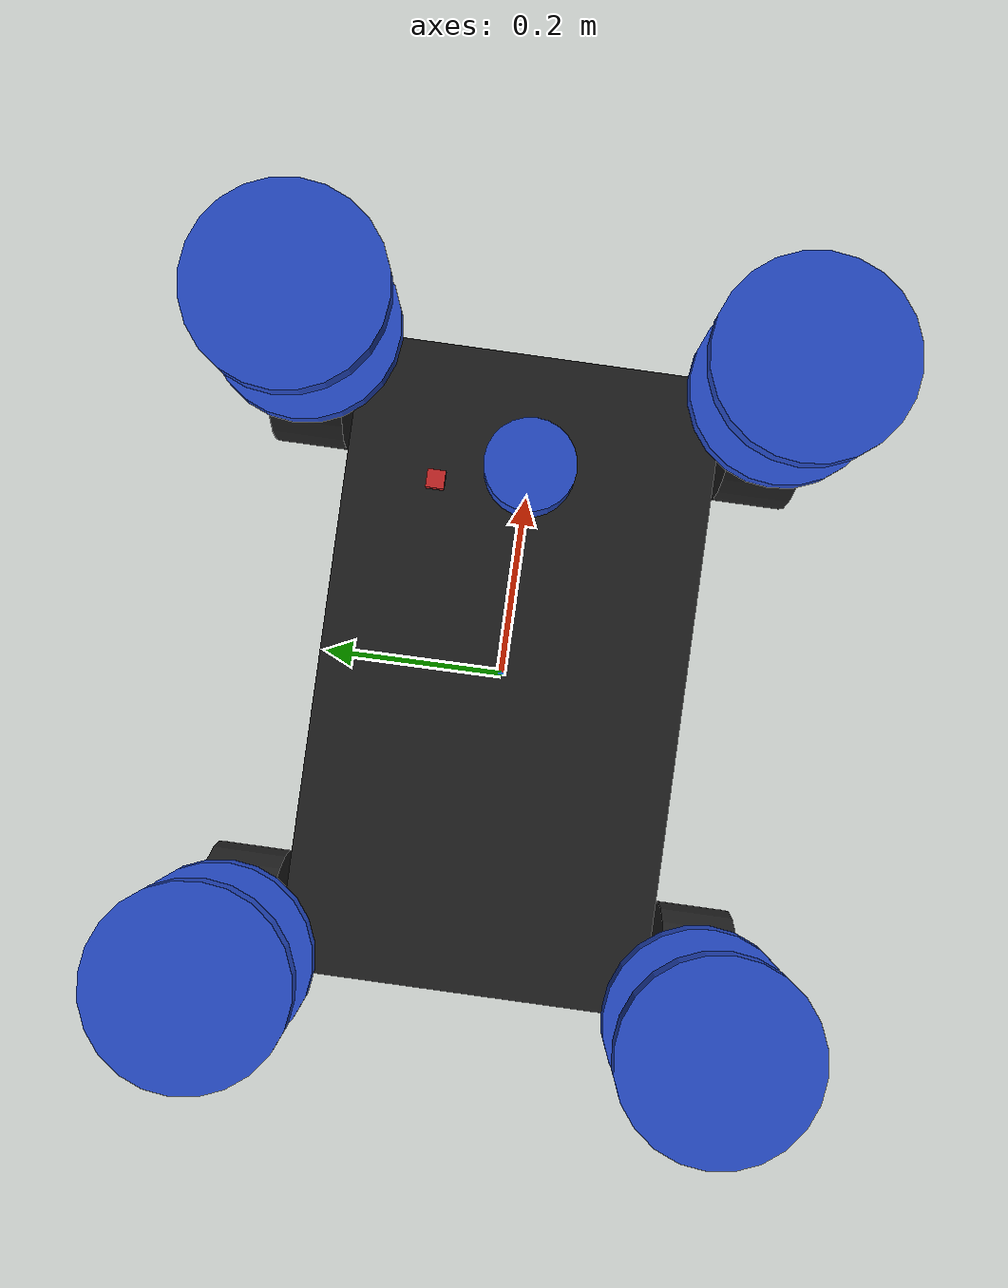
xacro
<?xml version="1.0"?>
<robot name="steer_bot" xmlns:xacro="http://wiki.ros.org/xacro">
  <!-- Include xacro for inertials, materials and wheels -->
  <xacro:include filename="$(find steer_bot_description)/urdf/wheel.xacro"/>
  <xacro:include filename="$(find steer_bot_description)/urdf/hokuyo.urdf.xacro"/>
  <xacro:include filename="$(find steer_bot_description)/urdf/imu.urdf.xacro"/>
  <xacro:include filename="$(find steer_bot_description)/urdf/camera.urdf.xacro"/>

  <xacro:property name="robot_namespace" value="/steer_bot"/>

  <!-- Gazebo plugins -->
  <gazebo>
    <!-- Load ros_control plugin using the steer_bot_hardware_gazebo
    implementation of the hardware_interface::RobotHW -->
    <plugin name="gazebo_ros_control" filename="libgazebo_ros_control.so">
      <robotNamespace>${robot_namespace}</robotNamespace>
      <robotSimType>steer_bot_hardware_gazebo/SteerBotHardwareGazebo</robotSimType>
      <legacyModeNS>false</legacyModeNS>
    </plugin>
  </gazebo>

  <!-- Math constants -->
  <xacro:property name="deg_to_rad" value="0.01745329251994329577"/>

  <!-- Robot base dimensions -->
  <xacro:property name="base_length" value="0.7" />
  <xacro:property name="base_width" value="0.4" />
  <xacro:property name="base_height" value="0.1" />
  <xacro:property name="base_mass" value="0.0645" />
  <!-- axle link -->
  <xacro:property name="axle_length" value="0.05"/>
  <xacro:property name="axle_mass" value="0.01"/>

  <!-- Wheel link dimensions -->
  <xacro:property name="wheel_radius" value="0.1" />
  <xacro:property name="wheel_thickness" value="0.08" />
  <xacro:property name="wheel_mass" value="1" />

  <!-- Steering link dimensions -->
  <xacro:property name="steer_radius" value="0.1" />
  <xacro:property name="steer_thickness" value="0.02" />
  <xacro:property name="steer_mass" value="0.2" />

  <!-- Axle positions -->
  <xacro:property name="axle_offset" value="0.05" />
  <xacro:property name="steer_offset" value="0.02" />

  <!--Shock_absorber-->
  <xacro:property name="spring_stiffness" value="2"/>
  <xacro:property name="lower" value="-0.03"/>
  <xacro:property name="upper" value="0"/>
  <xacro:property name="spring_reference" value="0"/>

  <!-- Base link -->
  <link name="base_link">
    <visual>
      <origin xyz="0 0 0" rpy="0 0 0"/>
      <geometry>
        <box size="${base_length} ${base_width} ${base_height}"/>
      </geometry>
      <material name="black" />
    </visual>
    <collision>
      <origin xyz="0 0 0" rpy="0 0 0"/>
      <geometry>
        <box size="${base_length} ${base_width} ${base_height}"/>
      </geometry>
    </collision>
    <xacro:solid_cuboid_inertial
        rpy="0 0 0" xyz="0 0 0"
        mass="${base_mass}"
        x="${base_length}" y="${base_width}" z="${base_height}" />
  </link>

  <!-- Include the lidar model -->
  <xacro:hokuyo_laser
    xyz="0.2 0 0.2"
    rpy="0 0 0"
    parent="base_link">
  </xacro:hokuyo_laser>

  <xacro:imu_sensor
    xyz="0.2 0.1 0.05"
    rpy="0 0 0"
    parent="base_link">
  </xacro:imu_sensor>

  <!-- Front steer and rear wheel joints required for ackermann_steering_controller -->
  <xacro:front_steer
    name="front"
    parent="base"
    steer_radius="${steer_radius}"
    steer_thickness="${steer_thickness}"
    steer_mass="${steer_mass}"
    base_length="${base_length}"
    base_width="${base_width}"
    axle_offset="${axle_offset}"
    steer_height="${wheel_radius+steer_offset}">
  </xacro:front_steer>

  <xacro:rear_wheel
    name="rear"
    parent="base"
    wheel_radius="${wheel_radius/4}"
    wheel_thickness="${wheel_thickness/2}"
    wheel_mass="${wheel_mass/32}">
    <origin xyz="${-base_length/2+steer_offset} 0 0" rpy="${-90 * deg_to_rad} 0 0"/>
  </xacro:rear_wheel>

  <!-- Steerable front wheels -->
  <xacro:front_wheel_lr
    name="front_right"
    parent="base"
    reflect="-1"
    wheel_radius="${wheel_radius}"
    wheel_thickness="${wheel_thickness}"
    wheel_mass="${wheel_mass}"
    steer_radius="${steer_radius}"
    steer_thickness="${steer_thickness}"
    steer_mass="${steer_mass}"
    base_length="${base_length}"
    base_width="${base_width}"
    axle_offset="${axle_offset}"
    steer_height="${wheel_radius+steer_offset}"
    lower="${lower}"
    upper="${upper}"
    spring_reference="{spring_reference}"
    spring_stiffness="{spring_stiffness}">
  </xacro:front_wheel_lr>
  <xacro:front_wheel_lr
    name="front_left"
    parent="base"
    reflect="1"
    wheel_radius="${wheel_radius}"
    wheel_thickness="${wheel_thickness}"
    wheel_mass="${wheel_mass}"
    steer_radius="${steer_radius}"
    steer_thickness="${steer_thickness}"
    steer_mass="${steer_mass}"
    base_length="${base_length}"
    base_width="${base_width}"
    axle_offset="${axle_offset}"
    steer_height="${wheel_radius+steer_offset}"
    lower="${lower}"
    upper="${upper}"
    spring_reference="{spring_reference}"
    spring_stiffness="{spring_stiffness}">
  </xacro:front_wheel_lr>

  <!-- Rear wheels -->
  <xacro:rear_wheel_lr
    name="rear_right"
    parent="base"
    reflect="-1"
    wheel_radius="${wheel_radius}"
    wheel_thickness="${wheel_thickness}"
    wheel_mass="${wheel_mass}"
    steer_radius="${steer_radius}"
    steer_thickness="${steer_thickness}"
    steer_mass="${steer_mass}"
    base_length="${base_length}"
    base_width="${base_width}"
    axle_offset="${axle_offset}"
    steer_height="${wheel_radius+steer_offset}"
    lower="${lower}"
    upper="${upper}"
    spring_reference="{spring_reference}"
    spring_stiffness="{spring_stiffness}">
  </xacro:rear_wheel_lr>
  <xacro:rear_wheel_lr
    name="rear_left"
    parent="base"
    reflect="1"
    wheel_radius="${wheel_radius}"
    wheel_thickness="${wheel_thickness}"
    wheel_mass="${wheel_mass}"
    steer_radius="${steer_radius}"
    steer_thickness="${steer_thickness}"
    steer_mass="${steer_mass}"
    base_length="${base_length}"
    base_width="${base_width}"
    axle_offset="${axle_offset}"
    steer_height="${wheel_radius+steer_offset}"
    lower="${lower}"
    upper="${upper}"
    spring_reference="{spring_reference}"
    spring_stiffness="{spring_stiffness}">

  </xacro:rear_wheel_lr>

  <!-- Colour -->
  <gazebo reference="base_link">
    <material>Gazebo/Grey</material>
  </gazebo>

</robot>

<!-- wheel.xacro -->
<robot name="wheel" xmlns:xacro="http://wiki.ros.org/xacro">
  <!-- Include xacro for materials and inertials -->
  <xacro:include filename="$(find steer_bot_description)/urdf/materials.xacro"/>
  <xacro:include filename="$(find steer_bot_description)/urdf/inertials.xacro"/>

  <!-- Properties -->
  <xacro:property name="steer_effort" value="100000.0"/>
  <xacro:property name="steer_velocity" value="50000.0"/>
  <xacro:property name="steer_limit_deg" value="45.0"/>

  <!-- Bicycle model front steering link (required for steer_drive_controller) -->
  <xacro:macro name="front_steer"
    params="
      name
      parent
      steer_radius
      steer_thickness
      steer_mass
      base_length
      base_width
      axle_offset
      steer_height">
    <link name="${name}_steer_link">
      <visual>
        <origin xyz="0 0 0" rpy="0 0 0"/>
        <geometry>
          <cylinder radius="${steer_radius/1000000}" length="${steer_thickness/1000000}"/>
        </geometry>
        <material name="yellow" />
      </visual>
      <collision>
        <origin xyz="0 0 0" rpy="0 0 0"/>
        <geometry>
          <cylinder radius="${steer_radius/1000000}" length="${steer_thickness/1000000}"/>
        </geometry>
      </collision>
      <xacro:solid_cylinder_inertial
          rpy="0 0 0" xyz="0 0 0"
          mass="${steer_mass/1000000}"
          radius="${steer_radius/1000000}" length="${steer_thickness/1000000}" />
    </link>

    <joint name="${name}_steer_joint" type="revolute">
      <parent link="${parent}_link"/>
      <child link="${name}_steer_link"/>
      <origin xyz="${base_length/2-steer_offset} 0 ${steer_height}" rpy="0 0 0"/>
      <axis xyz="0 0 1"/>
      <limit effort="${steer_effort}"
             lower="${-180.0 * deg_to_rad}" upper="${180.0 * deg_to_rad}"
             velocity="${steer_velocity}"/>
    </joint>

    <transmission name="${name}_steer_joint_trans">
      <type>transmission_interface/SimpleTransmission</type>
      <actuator name="${name}_steer_joint_motor">
        <mechanicalReduction>1</mechanicalReduction>
        <hardwareInterface>hardware_interface/PositionJointInterface</hardwareInterface>
      </actuator>
      <joint name="${name}_steer_joint">
        <hardwareInterface>hardware_interface/PositionJointInterface</hardwareInterface>
      </joint>
    </transmission>

    <gazebo reference="${name}_steer_link">
      <material>Gazebo/Yellow</material>
    </gazebo>
  </xacro:macro>

  <!-- Car steering model front (steerable) wheel links (left/right) -->
  <xacro:macro name="front_wheel_lr"
    params="
      name
      parent
      reflect
      wheel_radius
      wheel_thickness
      wheel_mass
      steer_radius
      steer_thickness
      steer_mass
      base_length
      base_width
      axle_offset
      steer_height
      lower
      upper
      spring_reference
      spring_stiffness">

    <link name="${name}_steer_link2">
      <visual>
        <origin xyz="0 0 0" rpy="0 0 0"/>
        <geometry>
          <cylinder radius="${steer_radius}" length="${steer_thickness}"/>
        </geometry>
        <material name="blue" />
      </visual>
      <collision>
        <origin xyz="0 0 0" rpy="0 0 0"/>
        <geometry>
          <cylinder radius="${steer_radius}" length="${steer_thickness}"/>
        </geometry>
      </collision>
      <xacro:solid_cylinder_inertial
          rpy="0 0 0" xyz="0 0 0"
          mass="${steer_mass}"
          radius="${steer_radius}" length="${steer_thickness}" />
    </link>

    <joint name="${name}_steer_joint" type="revolute">
      <parent link="${parent}_link"/>
      <child link="${name}_steer_link2"/>
      <origin xyz="${base_length/2-steer_offset} ${reflect*(base_width/2+axle_offset)} ${steer_height*2}" rpy="0 0 0"/>
      <axis xyz="0 0 -1"/>
      <limit effort="${steer_effort}"
             lower="${steer_limit_deg * deg_to_rad * -1.0}" upper="${steer_limit_deg * deg_to_rad}"
             velocity="${steer_velocity}"/>
      <dynamics spring_stiffness="1" damping="1" spring_reference="0" friction="1"/>
    </joint>

    <link name="${name}_steer_link">
      <visual>
        <origin xyz="0 0 0" rpy="0 0 0"/>
        <geometry>
          <cylinder radius="${steer_radius}" length="${steer_thickness}"/>
        </geometry>
        <material name="blue" />
      </visual>
      <collision>
        <origin xyz="0 0 0" rpy="0 0 0"/>
        <geometry>
          <cylinder radius="${steer_radius}" length="${steer_thickness}"/>
        </geometry>
      </collision>
      <xacro:solid_cylinder_inertial
          rpy="0 0 0" xyz="0 0 0"
          mass="${steer_mass}"
          radius="${steer_radius}" length="${steer_thickness}" />
    </link>

    <joint name="${name}_shock_absorber" type="prismatic">
      <parent link="${name}_steer_link2"/>
      <child link="${name}_steer_link"/>
      <origin xyz="0 0 ${-steer_height}" rpy="0 0 0"/>
      <axis xyz="0 0 1"/>
      <limit lower="${lower}" upper="${upper}" effort="-1" velocity="-1"/>
      <dynamics damping="5" spring_stiffness="${spring_stiffness}" spring_reference="${spring_reference}" friction="0.001"/>
    </joint>

    <transmission name="${name}_shock_trans">
      <type>transmission_interface/SimpleTransmission</type>
      <joint name="${name}_shock_absorber">
        <hardwareInterface>hardware_interface/EffortJointInterface</hardwareInterface>
      </joint>
      <actuator name="${name}_shock_act">
        <hardwareInterface>hardware_interface/EffortJointInterface</hardwareInterface>
        <mechanicalReduction>1</mechanicalReduction>
      </actuator>
    </transmission>

    <link name="${name}_wheel_link">
      <visual>
        <origin xyz="0 0 0" rpy="0 0 0"/>
        <geometry>
          <cylinder radius="${wheel_radius}" length="${wheel_thickness}"/>
        </geometry>
        <material name="black" />
      </visual>
      <collision>
        <origin xyz="0 0 0" rpy="0 0 0"/>
        <geometry>
          <cylinder radius="${wheel_radius}" length="${wheel_thickness}"/>
        </geometry>
      </collision>
      <xacro:solid_cylinder_inertial
          rpy="0 0 0" xyz="0 0 0"
          mass="${wheel_mass}"
          radius="${wheel_radius}" length="${wheel_thickness}" />
    </link>

    <joint name="${name}_wheel_joint" type="continuous">
      <parent link="${name}_steer_link"/>
      <child link="${name}_wheel_link"/>
      <origin xyz="0 0 ${-steer_height}" rpy="${-90 * deg_to_rad} 0 0"/>
      <axis xyz="0 0 1"/>
    </joint>

    <transmission name="${name}_wheel_joint_trans">
      <type>transmission_interface/SimpleTransmission</type>
      <actuator name="${name}_wheel_joint_motor">
        <mechanicalReduction>1</mechanicalReduction>
        <hardwareInterface>hardware_interface/VelocityJointInterface</hardwareInterface>
      </actuator>
      <joint name="${name}_wheel_joint">
        <hardwareInterface>hardware_interface/VelocityJointInterface</hardwareInterface>
      </joint>
    </transmission>

    <gazebo reference="${name}_steer_link">
      <material>Gazebo/GreyTransparent</material>
    </gazebo>

    <gazebo reference="${name}_wheel_link">
      <material>Gazebo/Black</material>
    </gazebo>
  </xacro:macro>

  <!-- Bicycle model rear wheel link (required for steer_drive_controller) -->
  <xacro:macro name="rear_wheel"
    params="
      name
      parent
      wheel_radius
      wheel_thickness
      wheel_mass
      *origin">
    <link name="${name}_wheel_link">
      <visual>
        <origin xyz="0 0 0" rpy="0 0 0"/>
        <geometry>
          <cylinder radius="${wheel_radius}" length="${wheel_thickness}"/>
        </geometry>
        <material name="black" />
      </visual>
      <collision>
        <origin xyz="0 0 0" rpy="0 0 0"/>
        <geometry>
          <cylinder radius="${wheel_radius}" length="${wheel_thickness}"/>
        </geometry>
      </collision>
      <xacro:solid_cylinder_inertial
          rpy="0 0 0" xyz="0 0 0"
          mass="${wheel_mass}"
          radius="${wheel_radius}" length="${wheel_thickness}" />
    </link>

    <joint name="${name}_wheel_joint" type="continuous">
      <parent link="${parent}_link"/>
      <child link="${name}_wheel_link"/>
      <xacro:insert_block name="origin"/>
      <axis xyz="0 0 1"/>
    </joint>

    <transmission name="${name}_wheel_joint_trans">
      <type>transmission_interface/SimpleTransmission</type>
      <actuator name="${name}_wheel_joint_motor">
        <mechanicalReduction>1</mechanicalReduction>
        <hardwareInterface>hardware_interface/VelocityJointInterface</hardwareInterface>
      </actuator>
      <joint name="${name}_wheel_joint">
        <hardwareInterface>hardware_interface/VelocityJointInterface</hardwareInterface>
      </joint>
    </transmission>

    <gazebo reference="${name}_wheel_link">
      <material>Gazebo/Yellow</material>
    </gazebo>
  </xacro:macro>

  <!-- Bicycle model front wheel link (passive - no transmission) -->
  <xacro:macro name="front_wheel"
    params="
      name
      parent
      wheel_radius
      wheel_thickness
      wheel_mass
      *origin">
    <link name="${name}_wheel_link">
      <visual>
        <origin xyz="0 0 0" rpy="0 0 0"/>
        <geometry>
          <cylinder radius="${wheel_radius}" length="${wheel_thickness}"/>
        </geometry>
        <material name="yellow" />
      </visual>
      <collision>
        <origin xyz="0 0 0" rpy="0 0 0"/>
        <geometry>
          <cylinder radius="${wheel_radius}" length="${wheel_thickness}"/>
        </geometry>
      </collision>
      <xacro:solid_cylinder_inertial
          rpy="0 0 0" xyz="0 0 0"
          mass="${wheel_mass}"
          radius="${wheel_radius}" length="${wheel_thickness}" />
    </link>

    <joint name="${name}_wheel_joint" type="continuous">
      <parent link="${parent}_link"/>
      <child link="${name}_wheel_link"/>
      <xacro:insert_block name="origin"/>
      <axis xyz="0 0 1"/>
    </joint>

    <gazebo reference="${name}_wheel_link">
      <material>Gazebo/Yellow</material>
    </gazebo>

    <gazebo reference="${name}_wheel_joint">
      <provideFeedback>true</provideFeedback>
    </gazebo>
  </xacro:macro>

     <xacro:macro name="rear_wheel_lr"
    params="
      name
      parent
      reflect
      wheel_radius
      wheel_thickness
      wheel_mass
      steer_radius
      steer_thickness
      steer_mass
      base_length
      base_width
      axle_offset
      steer_height
      lower
      upper
      spring_reference
      spring_stiffness">

    <link name="${name}_steer_link2">
      <visual>
        <origin xyz="0 0 0" rpy="0 0 0"/>
        <geometry>
          <cylinder radius="${steer_radius}" length="${steer_thickness}"/>
        </geometry>
        <material name="blue" />
      </visual>
      <collision>
        <origin xyz="0 0 0" rpy="0 0 0"/>
        <geometry>
          <cylinder radius="${steer_radius}" length="${steer_thickness}"/>
        </geometry>
      </collision>
      <xacro:solid_cylinder_inertial
          rpy="0 0 0" xyz="0 0 0"
          mass="${steer_mass}"
          radius="${steer_radius}" length="${steer_thickness}" />
    </link>

    <joint name="${name}_steer_joint" type="revolute">
      <parent link="${parent}_link"/>
      <child link="${name}_steer_link2"/>
      <origin xyz="${-base_length/2+steer_offset} ${reflect*(base_width/2+axle_offset)} ${steer_height*2}" rpy="0 0 0"/>
      <axis xyz="0 0 -1"/>
      <limit effort="${steer_effort}"
             lower="0" upper="0"
             velocity="${steer_velocity}"/>
      <dynamics spring_stiffness="1" damping="1" spring_reference="0" friction="1"/>
    </joint>

    <link name="${name}_steer_link">
      <visual>
        <origin xyz="0 0 0" rpy="0 0 0"/>
        <geometry>
          <cylinder radius="${steer_radius}" length="${steer_thickness}"/>
        </geometry>
        <material name="blue" />
      </visual>
      <collision>
        <origin xyz="0 0 0" rpy="0 0 0"/>
        <geometry>
          <cylinder radius="${steer_radius}" length="${steer_thickness}"/>
        </geometry>
      </collision>
      <xacro:solid_cylinder_inertial
          rpy="0 0 0" xyz="0 0 0"
          mass="${steer_mass}"
          radius="${steer_radius}" length="${steer_thickness}" />
    </link>

    <joint name="${name}_shock_absorber" type="prismatic">
      <parent link="${name}_steer_link2"/>
      <child link="${name}_steer_link"/>
      <origin xyz="0 0 ${-steer_height}" rpy="0 0 0"/>
      <axis xyz="0 0 1"/>
      <limit lower="${lower}" upper="${upper}" effort="-1" velocity="-1"/>
      <dynamics damping="5" spring_stiffness="${spring_stiffness}" spring_reference="${spring_reference}" friction="0.001"/>
    </joint>

    <transmission name="${name}_shock_trans">
      <type>transmission_interface/SimpleTransmission</type>
      <joint name="${name}_shock_absorber">
        <hardwareInterface>hardware_interface/EffortJointInterface</hardwareInterface>
      </joint>
      <actuator name="${name}_shock_act">
        <hardwareInterface>hardware_interface/EffortJointInterface</hardwareInterface>
        <mechanicalReduction>1</mechanicalReduction>
      </actuator>
    </transmission>

    <link name="${name}_wheel_link">
      <visual>
        <origin xyz="0 0 0" rpy="0 0 0"/>
        <geometry>
          <cylinder radius="${wheel_radius}" length="${wheel_thickness}"/>
        </geometry>
        <material name="black" />
      </visual>
      <collision>
        <origin xyz="0 0 0" rpy="0 0 0"/>
        <geometry>
          <cylinder radius="${wheel_radius}" length="${wheel_thickness}"/>
        </geometry>
      </collision>
      <xacro:solid_cylinder_inertial
          rpy="0 0 0" xyz="0 0 0"
          mass="${wheel_mass}"
          radius="${wheel_radius}" length="${wheel_thickness}" />
    </link>

    <joint name="${name}_wheel_joint" type="continuous">
      <parent link="${name}_steer_link"/>
      <child link="${name}_wheel_link"/>
      <origin xyz="0 0 ${-steer_height}" rpy="${-90 * deg_to_rad} 0 0"/>
      <axis xyz="0 0 1"/>
    </joint>

    <transmission name="${name}_wheel_joint_trans">
      <type>transmission_interface/SimpleTransmission</type>
      <actuator name="${name}_wheel_joint_motor">
        <mechanicalReduction>1</mechanicalReduction>
        <hardwareInterface>hardware_interface/VelocityJointInterface</hardwareInterface>
      </actuator>
      <joint name="${name}_wheel_joint">
        <hardwareInterface>hardware_interface/VelocityJointInterface</hardwareInterface>
      </joint>
    </transmission>

    <gazebo reference="${name}_steer_link">
      <material>Gazebo/GreyTransparent</material>
    </gazebo>

    <gazebo reference="${name}_wheel_link">
      <material>Gazebo/Black</material>
    </gazebo>
  </xacro:macro>

</robot>

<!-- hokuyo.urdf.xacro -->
<robot xmlns:xacro="http://www.ros.org/wiki/xacro" name="hokuyo">

<xacro:macro name="hokuyo_laser" params="xyz rpy parent">
    <joint name="hokuyo_laser_joint" type="fixed">
        <axis xyz="0 0 1" />
        <origin xyz="${xyz}" rpy="${rpy}"/>
        <parent link="${parent}"/>
        <child link="hokuyo_laser_link"/>
    </joint>

    <link name="hokuyo_laser_link">
        <collision>
            <origin xyz="0 0 0" rpy="0 0 0"/>
            <geometry>
                <cylinder length="0.04" radius="0.045"/>
            </geometry>
        </collision>
        <visual>
            <origin xyz="0 0 0" rpy="0 0 0"/>
            <geometry>
                <cylinder length="0.04" radius="0.045"/>
            </geometry>
            <material name="iRobot/LightBlue"/>
        </visual>
        <inertial>
            <mass value="1e-5" />
            <origin xyz="0 0 0" rpy="0 0 0"/>
            <inertia ixx="1e-6" ixy="0" ixz="0" iyy="1e-6" iyz="0" izz="1e-6" />
        </inertial>
    </link>

    <gazebo reference="hokuyo_laser_link">
        <gravity>true</gravity>
        <sensor type="ray" name="head_hokuyo_sensor">
            <pose>0 0 0 0 0 0</pose>
            <visualize>false</visualize>
            <update_rate>40</update_rate>
            <ray>
                <scan>
                    <horizontal>
                        <samples>2187</samples>
                        <resolution>1</resolution>
                        <min_angle>-3.14159</min_angle>
                        <max_angle>3.14159</max_angle>
                    </horizontal>
                </scan>
                <range>
                    <min>0.2</min>
                    <max>40</max>
                    <resolution>0.025</resolution>
                </range>
                <noise>
                    <type>gaussian</type>
                    <mean>0.0</mean>
                    <stddev>0.0</stddev>
                </noise>
            </ray>
            <plugin name="gazebo_ros_head_hokuyo_controller" filename="libgazebo_ros_laser.so">
                <robotNamespace></robotNamespace>
                <topicName>laser_scan</topicName>
                <frameName>hokuyo_laser_link</frameName>
            </plugin>
        </sensor>
    </gazebo>

</xacro:macro>

</robot>

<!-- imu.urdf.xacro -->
<robot xmlns:xacro="http://www.ros.org/wiki/xacro" name="imu">

<xacro:macro name="imu_sensor" params="xyz rpy parent">
    <joint name="imu_sensor_joint" type="fixed">
        <axis xyz="0 0 1" />
        <origin xyz="${xyz}" rpy="${rpy}"/>
        <parent link="${parent}"/>
        <child link="imu_sensor_link"/>
    </joint>

    <link name="imu_sensor_link">
        <collision>
            <origin xyz="0 0 0" rpy="0 0 0"/>
            <geometry>
                <box size="0.02 0.02 0.02"/>
            </geometry>
        </collision>
        <visual>
            <origin xyz="0 0 0" rpy="0 0 0"/>
            <geometry>
                <box size="0.02 0.02 0.02"/>
            </geometry>
            <material name="iRobot/Red"/>
        </visual>
        <inertial>
            <mass value="0.001" />
            <origin xyz="0 0 0" rpy="0 0 0"/>
            <inertia ixx="0.00000015" ixy="0" ixz="0" iyy="0.00000015" iyz="0" izz="0.00000015" />
        </inertial>
    </link>

    <gazebo reference="imu_sensor_link">
        <gravity>true</gravity>
        <sensor name='imu_sensor' type='imu'>
            <always_on>1</always_on>
            <update_rate>1000</update_rate>
            <visualize>1</visualize>
            <topic>__default_topic__</topic>
            <plugin name='imu_plugin' filename='libgazebo_ros_imu_sensor.so'>
                <topicName>imu_data</topicName>
                <bodyName>imu_sensor_link</bodyName>
                <updateRateHZ>10.0</updateRateHZ>
                <gaussianNoise>0.0</gaussianNoise>
                <xyzOffset>0 0 0</xyzOffset>
                <rpyOffset>0 0 0</rpyOffset>
                <frameName>base_link</frameName>
                <initialOrientationAsReference>false</initialOrientationAsReference>
            </plugin>
            <pose>0 0 0 0 0 0</pose>
        </sensor>
    </gazebo>

</xacro:macro>

</robot>
